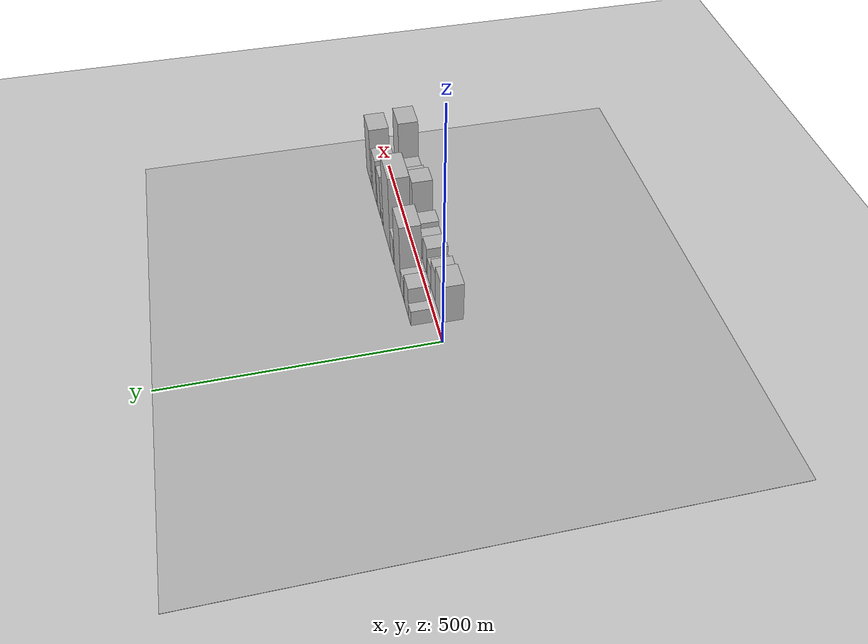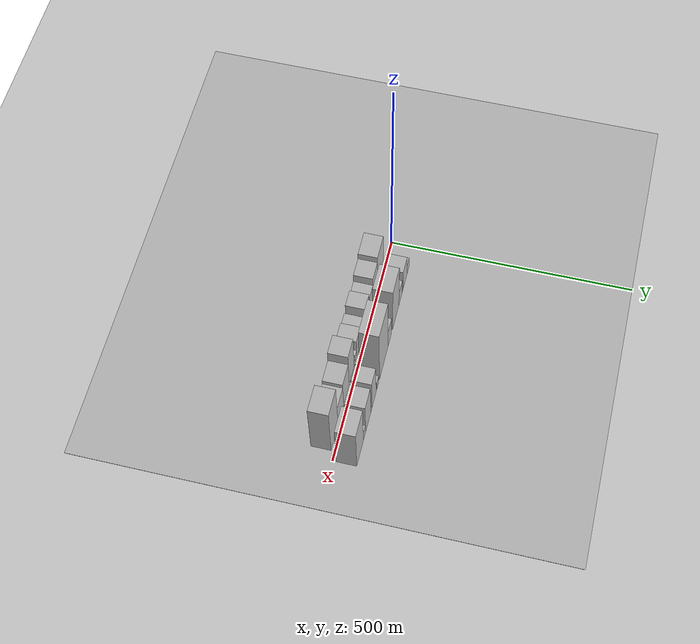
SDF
<?xml version="1.0" encoding="utf-8"?>

<sdf version="1.6">

   <world name="default">

      <gui fullscreen="0">

         <camera name="user_camera">

            <pose>-15 0 4.57585 0 0 0</pose>

            <view_controller>orbit</view_controller>

         </camera>

      </gui>

      <scene>

         <sky>

           <clouds>

             <speed>12</speed>

           </clouds>

         </sky>

         <ambient>0.4 0.4 0.4 1</ambient>

         <background>0.7 0.7 0.7 1</background>

         <shadows>1</shadows>

      </scene>

      <gravity>0 0 -9.8066</gravity>

      <magnetic_field>6e-06 2.3e-05 -4.2e-05</magnetic_field>

      <physics default="0" name="default_physics" type="ode">

         <ode>

            <solver>

               <type>quick</type>

               <iters>10</iters>

               <sor>1.0</sor>

               <use_dynamic_moi_rescaling>0</use_dynamic_moi_rescaling>

            </solver>

            <constraints>

               <cfm>0</cfm>

               <erp>0.2</erp>

               <contact_max_correcting_vel>100</contact_max_correcting_vel>

               <contact_surface_layer>0.001</contact_surface_layer>

            </constraints>

         </ode>

         <max_step_size>0.004</max_step_size>

         <real_time_factor>1</real_time_factor>

         <real_time_update_rate>250</real_time_update_rate>

      </physics>

      <light name="sun" type="directional">

         <cast_shadows>1</cast_shadows>

         <pose>0 0 10 0 0 0</pose>

         <diffuse>0.8 0.8 0.8 1</diffuse>

         <specular>0.2 0.2 0.2 1</specular>

         <attenuation>

            <range>1000</range>

            <constant>0.9</constant>

            <linear>0.01</linear>

            <quadratic>0.001</quadratic>

         </attenuation>

         <direction>-0.5 0.1 -0.9</direction>

      </light>

      <include>

         <name>ground_plane_1</name>

         <uri>model://HANNAS_ground_plane</uri>

         <pose>0 0 0  0 0 0</pose>

      </include>

      <include>

         <name>ground_plane_2</name>

         <uri>model://HANNAS_ground_plane</uri>

         <pose>100 0 0  0 0 0</pose>

      </include>

      <model name="building_1">

         <static>1</static>

         <pose frame="">60.4046 27.5000 0 0.000000 0.000000 1.570796</pose>

         <link name="link">

            <pose frame="">0 0 18.00 0 0 0</pose>

            <collision name="collision">

               <geometry>

                  <box>

                     <size>40.0000 20.8093 36.0000</size>

                  </box>

               </geometry>

               <max_contacts>10</max_contacts>

               <surface>

                  <contact>

                     <ode/>

                  </contact>

                  <bounce/>

                  <friction>

                     <torsional>

                        <ode/>

                     </torsional>

                     <ode/>

                  </friction>

               </surface>

            </collision>

            <visual name="visual">

               <cast_shadows>0</cast_shadows>

               <geometry>

                  <box>

                     <size>40.0000 20.8093 36.0000</size>

                  </box>

               </geometry>

               <material>

                  <script>

                     <uri>model://HANNAS_wall/materials/scripts</uri>

                     <uri>model://HANNAS_wall/materials/textures</uri>

                     <name>vrc/HANNAS_wall</name>

                  </script>

               </material>

            </visual>

            <self_collide>0</self_collide>

            <enable_wind>0</enable_wind>

            <kinematic>0</kinematic>

         </link>

      </model>

      <model name="building_2">

         <static>1</static>

         <pose frame="">89.0843 27.5000 0 0.000000 0.000000 1.570796</pose>

         <link name="link">

            <pose frame="">0 0 36.00 0 0 0</pose>

            <collision name="collision">

               <geometry>

                  <box>

                     <size>40.0000 36.5500 72.0000</size>

                  </box>

               </geometry>

               <max_contacts>10</max_contacts>

               <surface>

                  <contact>

                     <ode/>

                  </contact>

                  <bounce/>

                  <friction>

                     <torsional>

                        <ode/>

                     </torsional>

                     <ode/>

                  </friction>

               </surface>

            </collision>

            <visual name="visual">

               <cast_shadows>0</cast_shadows>

               <geometry>

                  <box>

                     <size>40.0000 36.5500 72.0000</size>

                  </box>

               </geometry>

               <material>

                  <script>

                     <uri>model://HANNAS_wall/materials/scripts</uri>

                     <uri>model://HANNAS_wall/materials/textures</uri>

                     <name>vrc/HANNAS_wall</name>

                  </script>

               </material>

            </visual>

            <self_collide>0</self_collide>

            <enable_wind>0</enable_wind>

            <kinematic>0</kinematic>

         </link>

      </model>

      <model name="building_3">

         <static>1</static>

         <pose frame="">110.6040 27.5000 0 0.000000 0.000000 1.570796</pose>

         <link name="link">

            <pose frame="">0 0 7.50 0 0 0</pose>

            <collision name="collision">

               <geometry>

                  <box>

                     <size>40.0000 6.4895 15.0000</size>

                  </box>

               </geometry>

               <max_contacts>10</max_contacts>

               <surface>

                  <contact>

                     <ode/>

                  </contact>

                  <bounce/>

                  <friction>

                     <torsional>

                        <ode/>

                     </torsional>

                     <ode/>

                  </friction>

               </surface>

            </collision>

            <visual name="visual">

               <cast_shadows>0</cast_shadows>

               <geometry>

                  <box>

                     <size>40.0000 6.4895 15.0000</size>

                  </box>

               </geometry>

               <material>

                  <script>

                     <uri>model://HANNAS_wall/materials/scripts</uri>

                     <uri>model://HANNAS_wall/materials/textures</uri>

                     <name>vrc/HANNAS_wall</name>

                  </script>

               </material>

            </visual>

            <self_collide>0</self_collide>

            <enable_wind>0</enable_wind>

            <kinematic>0</kinematic>

         </link>

      </model>

      <model name="building_4">

         <static>1</static>

         <pose frame="">128.7569 27.5000 0 0.000000 0.000000 1.570796</pose>

         <link name="link">

            <pose frame="">0 0 25.50 0 0 0</pose>

            <collision name="collision">

               <geometry>

                  <box>

                     <size>40.0000 29.8163 51.0000</size>

                  </box>

               </geometry>

               <max_contacts>10</max_contacts>

               <surface>

                  <contact>

                     <ode/>

                  </contact>

                  <bounce/>

                  <friction>

                     <torsional>

                        <ode/>

                     </torsional>

                     <ode/>

                  </friction>

               </surface>

            </collision>

            <visual name="visual">

               <cast_shadows>0</cast_shadows>

               <geometry>

                  <box>

                     <size>40.0000 29.8163 51.0000</size>

                  </box>

               </geometry>

               <material>

                  <script>

                     <uri>model://HANNAS_wall/materials/scripts</uri>

                     <uri>model://HANNAS_wall/materials/textures</uri>

                     <name>vrc/HANNAS_wall</name>

                  </script>

               </material>

            </visual>

            <self_collide>0</self_collide>

            <enable_wind>0</enable_wind>

            <kinematic>0</kinematic>

         </link>

      </model>

      <model name="building_5">

         <static>1</static>

         <pose frame="">172.2235 27.5000 0 0.000000 0.000000 1.570796</pose>

         <link name="link">

            <pose frame="">0 0 75.00 0 0 0</pose>

            <collision name="collision">

               <geometry>

                  <box>

                     <size>40.0000 57.1169 150.0000</size>

                  </box>

               </geometry>

               <max_contacts>10</max_contacts>

               <surface>

                  <contact>

                     <ode/>

                  </contact>

                  <bounce/>

                  <friction>

                     <torsional>

                        <ode/>

                     </torsional>

                     <ode/>

                  </friction>

               </surface>

            </collision>

            <visual name="visual">

               <cast_shadows>0</cast_shadows>

               <geometry>

                  <box>

                     <size>40.0000 57.1169 150.0000</size>

                  </box>

               </geometry>

               <material>

                  <script>

                     <uri>model://HANNAS_wall/materials/scripts</uri>

                     <uri>model://HANNAS_wall/materials/textures</uri>

                     <name>vrc/HANNAS_wall</name>

                  </script>

               </material>

            </visual>

            <self_collide>0</self_collide>

            <enable_wind>0</enable_wind>

            <kinematic>0</kinematic>

         </link>

      </model>

      <model name="building_6">

         <static>1</static>

         <pose frame="">225.2234 27.5000 0 0.000000 0.000000 1.570796</pose>

         <link name="link">

            <pose frame="">0 0 31.50 0 0 0</pose>

            <collision name="collision">

               <geometry>

                  <box>

                     <size>40.0000 32.8828 63.0000</size>

                  </box>

               </geometry>

               <max_contacts>10</max_contacts>

               <surface>

                  <contact>

                     <ode/>

                  </contact>

                  <bounce/>

                  <friction>

                     <torsional>

                        <ode/>

                     </torsional>

                     <ode/>

                  </friction>

               </surface>

            </collision>

            <visual name="visual">

               <cast_shadows>0</cast_shadows>

               <geometry>

                  <box>

                     <size>40.0000 32.8828 63.0000</size>

                  </box>

               </geometry>

               <material>

                  <script>

                     <uri>model://HANNAS_wall/materials/scripts</uri>

                     <uri>model://HANNAS_wall/materials/textures</uri>

                     <name>vrc/HANNAS_wall</name>

                  </script>

               </material>

            </visual>

            <self_collide>0</self_collide>

            <enable_wind>0</enable_wind>

            <kinematic>0</kinematic>

         </link>

      </model>

      <model name="building_7">

         <static>1</static>

         <pose frame="">277.6087 27.5000 0 0.000000 0.000000 1.570796</pose>

         <link name="link">

            <pose frame="">0 0 90.00 0 0 0</pose>

            <collision name="collision">

               <geometry>

                  <box>

                     <size>40.0000 71.8879 180.0000</size>

                  </box>

               </geometry>

               <max_contacts>10</max_contacts>

               <surface>

                  <contact>

                     <ode/>

                  </contact>

                  <bounce/>

                  <friction>

                     <torsional>

                        <ode/>

                     </torsional>

                     <ode/>

                  </friction>

               </surface>

            </collision>

            <visual name="visual">

               <cast_shadows>0</cast_shadows>

               <geometry>

                  <box>

                     <size>40.0000 71.8879 180.0000</size>

                  </box>

               </geometry>

               <material>

                  <script>

                     <uri>model://HANNAS_wall/materials/scripts</uri>

                     <uri>model://HANNAS_wall/materials/textures</uri>

                     <name>vrc/HANNAS_wall</name>

                  </script>

               </material>

            </visual>

            <self_collide>0</self_collide>

            <enable_wind>0</enable_wind>

            <kinematic>0</kinematic>

         </link>

      </model>

      <model name="building_8">

         <static>1</static>

         <pose frame="">327.7260 27.5000 0 0.000000 0.000000 1.570796</pose>

         <link name="link">

            <pose frame="">0 0 15.00 0 0 0</pose>

            <collision name="collision">

               <geometry>

                  <box>

                     <size>40.0000 16.3466 30.0000</size>

                  </box>

               </geometry>

               <max_contacts>10</max_contacts>

               <surface>

                  <contact>

                     <ode/>

                  </contact>

                  <bounce/>

                  <friction>

                     <torsional>

                        <ode/>

                     </torsional>

                     <ode/>

                  </friction>

               </surface>

            </collision>

            <visual name="visual">

               <cast_shadows>0</cast_shadows>

               <geometry>

                  <box>

                     <size>40.0000 16.3466 30.0000</size>

                  </box>

               </geometry>

               <material>

                  <script>

                     <uri>model://HANNAS_wall/materials/scripts</uri>

                     <uri>model://HANNAS_wall/materials/textures</uri>

                     <name>vrc/HANNAS_wall</name>

                  </script>

               </material>

            </visual>

            <self_collide>0</self_collide>

            <enable_wind>0</enable_wind>

            <kinematic>0</kinematic>

         </link>

      </model>

      <model name="building_9">

         <static>1</static>

         <pose frame="">359.2704 27.5000 0 0.000000 0.000000 1.570796</pose>

         <link name="link">

            <pose frame="">0 0 52.50 0 0 0</pose>

            <collision name="collision">

               <geometry>

                  <box>

                     <size>40.0000 34.7423 105.0000</size>

                  </box>

               </geometry>

               <max_contacts>10</max_contacts>

               <surface>

                  <contact>

                     <ode/>

                  </contact>

                  <bounce/>

                  <friction>

                     <torsional>

                        <ode/>

                     </torsional>

                     <ode/>

                  </friction>

               </surface>

            </collision>

            <visual name="visual">

               <cast_shadows>0</cast_shadows>

               <geometry>

                  <box>

                     <size>40.0000 34.7423 105.0000</size>

                  </box>

               </geometry>

               <material>

                  <script>

                     <uri>model://HANNAS_wall/materials/scripts</uri>

                     <uri>model://HANNAS_wall/materials/textures</uri>

                     <name>vrc/HANNAS_wall</name>

                  </script>

               </material>

            </visual>

            <self_collide>0</self_collide>

            <enable_wind>0</enable_wind>

            <kinematic>0</kinematic>

         </link>

      </model>

      <model name="building_10">

         <static>1</static>

         <pose frame="">381.4641 27.5000 0 0.000000 0.000000 1.570796</pose>

         <link name="link">

            <pose frame="">0 0 10.50 0 0 0</pose>

            <collision name="collision">

               <geometry>

                  <box>

                     <size>40.0000 9.6452 21.0000</size>

                  </box>

               </geometry>

               <max_contacts>10</max_contacts>

               <surface>

                  <contact>

                     <ode/>

                  </contact>

                  <bounce/>

                  <friction>

                     <torsional>

                        <ode/>

                     </torsional>

                     <ode/>

                  </friction>

               </surface>

            </collision>

            <visual name="visual">

               <cast_shadows>0</cast_shadows>

               <geometry>

                  <box>

                     <size>40.0000 9.6452 21.0000</size>

                  </box>

               </geometry>

               <material>

                  <script>

                     <uri>model://HANNAS_wall/materials/scripts</uri>

                     <uri>model://HANNAS_wall/materials/textures</uri>

                     <name>vrc/HANNAS_wall</name>

                  </script>

               </material>

            </visual>

            <self_collide>0</self_collide>

            <enable_wind>0</enable_wind>

            <kinematic>0</kinematic>

         </link>

      </model>

      <model name="building_11">

         <static>1</static>

         <pose frame="">407.2352 27.5000 0 0.000000 0.000000 1.570796</pose>

         <link name="link">

            <pose frame="">0 0 54.00 0 0 0</pose>

            <collision name="collision">

               <geometry>

                  <box>

                     <size>40.0000 41.8970 108.0000</size>

                  </box>

               </geometry>

               <max_contacts>10</max_contacts>

               <surface>

                  <contact>

                     <ode/>

                  </contact>

                  <bounce/>

                  <friction>

                     <torsional>

                        <ode/>

                     </torsional>

                     <ode/>

                  </friction>

               </surface>

            </collision>

            <visual name="visual">

               <cast_shadows>0</cast_shadows>

               <geometry>

                  <box>

                     <size>40.0000 41.8970 108.0000</size>

                  </box>

               </geometry>

               <material>

                  <script>

                     <uri>model://HANNAS_wall/materials/scripts</uri>

                     <uri>model://HANNAS_wall/materials/textures</uri>

                     <name>vrc/HANNAS_wall</name>

                  </script>

               </material>

            </visual>

            <self_collide>0</self_collide>

            <enable_wind>0</enable_wind>

            <kinematic>0</kinematic>

         </link>

      </model>

      <model name="building_12">

         <static>1</static>

         <pose frame="">437.2371 27.5000 0 0.000000 0.000000 1.570796</pose>

         <link name="link">

            <pose frame="">0 0 16.50 0 0 0</pose>

            <collision name="collision">

               <geometry>

                  <box>

                     <size>40.0000 18.1068 33.0000</size>

                  </box>

               </geometry>

               <max_contacts>10</max_contacts>

               <surface>

                  <contact>

                     <ode/>

                  </contact>

                  <bounce/>

                  <friction>

                     <torsional>

                        <ode/>

                     </torsional>

                     <ode/>

                  </friction>

               </surface>

            </collision>

            <visual name="visual">

               <cast_shadows>0</cast_shadows>

               <geometry>

                  <box>

                     <size>40.0000 18.1068 33.0000</size>

                  </box>

               </geometry>

               <material>

                  <script>

                     <uri>model://HANNAS_wall/materials/scripts</uri>

                     <uri>model://HANNAS_wall/materials/textures</uri>

                     <name>vrc/HANNAS_wall</name>

                  </script>

               </material>

            </visual>

            <self_collide>0</self_collide>

            <enable_wind>0</enable_wind>

            <kinematic>0</kinematic>

         </link>

      </model>

      <model name="building_13">

         <static>1</static>

         <pose frame="">472.8130 27.5000 0 0.000000 0.000000 1.570796</pose>

         <link name="link">

            <pose frame="">0 0 69.00 0 0 0</pose>

            <collision name="collision">

               <geometry>

                  <box>

                     <size>40.0000 53.0449 138.0000</size>

                  </box>

               </geometry>

               <max_contacts>10</max_contacts>

               <surface>

                  <contact>

                     <ode/>

                  </contact>

                  <bounce/>

                  <friction>

                     <torsional>

                        <ode/>

                     </torsional>

                     <ode/>

                  </friction>

               </surface>

            </collision>

            <visual name="visual">

               <cast_shadows>0</cast_shadows>

               <geometry>

                  <box>

                     <size>40.0000 53.0449 138.0000</size>

                  </box>

               </geometry>

               <material>

                  <script>

                     <uri>model://HANNAS_wall/materials/scripts</uri>

                     <uri>model://HANNAS_wall/materials/textures</uri>

                     <name>vrc/HANNAS_wall</name>

                  </script>

               </material>

            </visual>

            <self_collide>0</self_collide>

            <enable_wind>0</enable_wind>

            <kinematic>0</kinematic>

         </link>

      </model>

      <model name="building_14">

         <static>1</static>

         <pose frame="">70.7400 -27.5000 0 0.000000 0.000000 1.570796</pose>

         <link name="link">

            <pose frame="">0 0 45.00 0 0 0</pose>

            <collision name="collision">

               <geometry>

                  <box>

                     <size>40.0000 51.4800 90.0000</size>

                  </box>

               </geometry>

               <max_contacts>10</max_contacts>

               <surface>

                  <contact>

                     <ode/>

                  </contact>

                  <bounce/>

                  <friction>

                     <torsional>

                        <ode/>

                     </torsional>

                     <ode/>

                  </friction>

               </surface>

            </collision>

            <visual name="visual">

               <cast_shadows>0</cast_shadows>

               <geometry>

                  <box>

                     <size>40.0000 51.4800 90.0000</size>

                  </box>

               </geometry>

               <material>

                  <script>

                     <uri>model://HANNAS_wall/materials/scripts</uri>

                     <uri>model://HANNAS_wall/materials/textures</uri>

                     <name>vrc/HANNAS_wall</name>

                  </script>

               </material>

            </visual>

            <self_collide>0</self_collide>

            <enable_wind>0</enable_wind>

            <kinematic>0</kinematic>

         </link>

      </model>

      <model name="building_15">

         <static>1</static>

         <pose frame="">116.0948 -27.5000 0 0.000000 0.000000 1.570796</pose>

         <link name="link">

            <pose frame="">0 0 36.00 0 0 0</pose>

            <collision name="collision">

               <geometry>

                  <box>

                     <size>40.0000 39.2296 72.0000</size>

                  </box>

               </geometry>

               <max_contacts>10</max_contacts>

               <surface>

                  <contact>

                     <ode/>

                  </contact>

                  <bounce/>

                  <friction>

                     <torsional>

                        <ode/>

                     </torsional>

                     <ode/>

                  </friction>

               </surface>

            </collision>

            <visual name="visual">

               <cast_shadows>0</cast_shadows>

               <geometry>

                  <box>

                     <size>40.0000 39.2296 72.0000</size>

                  </box>

               </geometry>

               <material>

                  <script>

                     <uri>model://HANNAS_wall/materials/scripts</uri>

                     <uri>model://HANNAS_wall/materials/textures</uri>

                     <name>vrc/HANNAS_wall</name>

                  </script>

               </material>

            </visual>

            <self_collide>0</self_collide>

            <enable_wind>0</enable_wind>

            <kinematic>0</kinematic>

         </link>

      </model>

      <model name="building_16">

         <static>1</static>

         <pose frame="">149.8241 -27.5000 0 0.000000 0.000000 1.570796</pose>

         <link name="link">

            <pose frame="">0 0 24.00 0 0 0</pose>

            <collision name="collision">

               <geometry>

                  <box>

                     <size>40.0000 28.2291 48.0000</size>

                  </box>

               </geometry>

               <max_contacts>10</max_contacts>

               <surface>

                  <contact>

                     <ode/>

                  </contact>

                  <bounce/>

                  <friction>

                     <torsional>

                        <ode/>

                     </torsional>

                     <ode/>

                  </friction>

               </surface>

            </collision>

            <visual name="visual">

               <cast_shadows>0</cast_shadows>

               <geometry>

                  <box>

                     <size>40.0000 28.2291 48.0000</size>

                  </box>

               </geometry>

               <material>

                  <script>

                     <uri>model://HANNAS_wall/materials/scripts</uri>

                     <uri>model://HANNAS_wall/materials/textures</uri>

                     <name>vrc/HANNAS_wall</name>

                  </script>

               </material>

            </visual>

            <self_collide>0</self_collide>

            <enable_wind>0</enable_wind>

            <kinematic>0</kinematic>

         </link>

      </model>

      <model name="building_17">

         <static>1</static>

         <pose frame="">185.4243 -27.5000 0 0.000000 0.000000 1.570796</pose>

         <link name="link">

            <pose frame="">0 0 33.00 0 0 0</pose>

            <collision name="collision">

               <geometry>

                  <box>

                     <size>40.0000 34.9711 66.0000</size>

                  </box>

               </geometry>

               <max_contacts>10</max_contacts>

               <surface>

                  <contact>

                     <ode/>

                  </contact>

                  <bounce/>

                  <friction>

                     <torsional>

                        <ode/>

                     </torsional>

                     <ode/>

                  </friction>

               </surface>

            </collision>

            <visual name="visual">

               <cast_shadows>0</cast_shadows>

               <geometry>

                  <box>

                     <size>40.0000 34.9711 66.0000</size>

                  </box>

               </geometry>

               <material>

                  <script>

                     <uri>model://HANNAS_wall/materials/scripts</uri>

                     <uri>model://HANNAS_wall/materials/textures</uri>

                     <name>vrc/HANNAS_wall</name>

                  </script>

               </material>

            </visual>

            <self_collide>0</self_collide>

            <enable_wind>0</enable_wind>

            <kinematic>0</kinematic>

         </link>

      </model>

      <model name="building_18">

         <static>1</static>

         <pose frame="">226.3975 -27.5000 0 0.000000 0.000000 1.570796</pose>

         <link name="link">

            <pose frame="">0 0 25.50 0 0 0</pose>

            <collision name="collision">

               <geometry>

                  <box>

                     <size>40.0000 28.9753 51.0000</size>

                  </box>

               </geometry>

               <max_contacts>10</max_contacts>

               <surface>

                  <contact>

                     <ode/>

                  </contact>

                  <bounce/>

                  <friction>

                     <torsional>

                        <ode/>

                     </torsional>

                     <ode/>

                  </friction>

               </surface>

            </collision>

            <visual name="visual">

               <cast_shadows>0</cast_shadows>

               <geometry>

                  <box>

                     <size>40.0000 28.9753 51.0000</size>

                  </box>

               </geometry>

               <material>

                  <script>

                     <uri>model://HANNAS_wall/materials/scripts</uri>

                     <uri>model://HANNAS_wall/materials/textures</uri>

                     <name>vrc/HANNAS_wall</name>

                  </script>

               </material>

            </visual>

            <self_collide>0</self_collide>

            <enable_wind>0</enable_wind>

            <kinematic>0</kinematic>

         </link>

      </model>

      <model name="building_19">

         <static>1</static>

         <pose frame="">257.6047 -27.5000 0 0.000000 0.000000 1.570796</pose>

         <link name="link">

            <pose frame="">0 0 31.50 0 0 0</pose>

            <collision name="collision">

               <geometry>

                  <box>

                     <size>40.0000 33.4391 63.0000</size>

                  </box>

               </geometry>

               <max_contacts>10</max_contacts>

               <surface>

                  <contact>

                     <ode/>

                  </contact>

                  <bounce/>

                  <friction>

                     <torsional>

                        <ode/>

                     </torsional>

                     <ode/>

                  </friction>

               </surface>

            </collision>

            <visual name="visual">

               <cast_shadows>0</cast_shadows>

               <geometry>

                  <box>

                     <size>40.0000 33.4391 63.0000</size>

                  </box>

               </geometry>

               <material>

                  <script>

                     <uri>model://HANNAS_wall/materials/scripts</uri>

                     <uri>model://HANNAS_wall/materials/textures</uri>

                     <name>vrc/HANNAS_wall</name>

                  </script>

               </material>

            </visual>

            <self_collide>0</self_collide>

            <enable_wind>0</enable_wind>

            <kinematic>0</kinematic>

         </link>

      </model>

      <model name="building_20">

         <static>1</static>

         <pose frame="">280.6680 -27.5000 0 0.000000 0.000000 1.570796</pose>

         <link name="link">

            <pose frame="">0 0 13.50 0 0 0</pose>

            <collision name="collision">

               <geometry>

                  <box>

                     <size>40.0000 12.6874 27.0000</size>

                  </box>

               </geometry>

               <max_contacts>10</max_contacts>

               <surface>

                  <contact>

                     <ode/>

                  </contact>

                  <bounce/>

                  <friction>

                     <torsional>

                        <ode/>

                     </torsional>

                     <ode/>

                  </friction>

               </surface>

            </collision>

            <visual name="visual">

               <cast_shadows>0</cast_shadows>

               <geometry>

                  <box>

                     <size>40.0000 12.6874 27.0000</size>

                  </box>

               </geometry>

               <material>

                  <script>

                     <uri>model://HANNAS_wall/materials/scripts</uri>

                     <uri>model://HANNAS_wall/materials/textures</uri>

                     <name>vrc/HANNAS_wall</name>

                  </script>

               </material>

            </visual>

            <self_collide>0</self_collide>

            <enable_wind>0</enable_wind>

            <kinematic>0</kinematic>

         </link>

      </model>

      <model name="building_21">

         <static>1</static>

         <pose frame="">292.1982 -27.5000 0 0.000000 0.000000 1.570796</pose>

         <link name="link">

            <pose frame="">0 0 10.50 0 0 0</pose>

            <collision name="collision">

               <geometry>

                  <box>

                     <size>40.0000 10.3730 21.0000</size>

                  </box>

               </geometry>

               <max_contacts>10</max_contacts>

               <surface>

                  <contact>

                     <ode/>

                  </contact>

                  <bounce/>

                  <friction>

                     <torsional>

                        <ode/>

                     </torsional>

                     <ode/>

                  </friction>

               </surface>

            </collision>

            <visual name="visual">

               <cast_shadows>0</cast_shadows>

               <geometry>

                  <box>

                     <size>40.0000 10.3730 21.0000</size>

                  </box>

               </geometry>

               <material>

                  <script>

                     <uri>model://HANNAS_wall/materials/scripts</uri>

                     <uri>model://HANNAS_wall/materials/textures</uri>

                     <name>vrc/HANNAS_wall</name>

                  </script>

               </material>

            </visual>

            <self_collide>0</self_collide>

            <enable_wind>0</enable_wind>

            <kinematic>0</kinematic>

         </link>

      </model>

      <model name="building_22">

         <static>1</static>

         <pose frame="">317.2066 -27.5000 0 0.000000 0.000000 1.570796</pose>

         <link name="link">

            <pose frame="">0 0 58.50 0 0 0</pose>

            <collision name="collision">

               <geometry>

                  <box>

                     <size>40.0000 39.6437 117.0000</size>

                  </box>

               </geometry>

               <max_contacts>10</max_contacts>

               <surface>

                  <contact>

                     <ode/>

                  </contact>

                  <bounce/>

                  <friction>

                     <torsional>

                        <ode/>

                     </torsional>

                     <ode/>

                  </friction>

               </surface>

            </collision>

            <visual name="visual">

               <cast_shadows>0</cast_shadows>

               <geometry>

                  <box>

                     <size>40.0000 39.6437 117.0000</size>

                  </box>

               </geometry>

               <material>

                  <script>

                     <uri>model://HANNAS_wall/materials/scripts</uri>

                     <uri>model://HANNAS_wall/materials/textures</uri>

                     <name>vrc/HANNAS_wall</name>

                  </script>

               </material>

            </visual>

            <self_collide>0</self_collide>

            <enable_wind>0</enable_wind>

            <kinematic>0</kinematic>

         </link>

      </model>

      <model name="building_23">

         <static>1</static>

         <pose frame="">359.2383 -27.5000 0 0.000000 0.000000 1.570796</pose>

         <link name="link">

            <pose frame="">0 0 43.50 0 0 0</pose>

            <collision name="collision">

               <geometry>

                  <box>

                     <size>40.0000 44.4196 87.0000</size>

                  </box>

               </geometry>

               <max_contacts>10</max_contacts>

               <surface>

                  <contact>

                     <ode/>

                  </contact>

                  <bounce/>

                  <friction>

                     <torsional>

                        <ode/>

                     </torsional>

                     <ode/>

                  </friction>

               </surface>

            </collision>

            <visual name="visual">

               <cast_shadows>0</cast_shadows>

               <geometry>

                  <box>

                     <size>40.0000 44.4196 87.0000</size>

                  </box>

               </geometry>

               <material>

                  <script>

                     <uri>model://HANNAS_wall/materials/scripts</uri>

                     <uri>model://HANNAS_wall/materials/textures</uri>

                     <name>vrc/HANNAS_wall</name>

                  </script>

               </material>

            </visual>

            <self_collide>0</self_collide>

            <enable_wind>0</enable_wind>

            <kinematic>0</kinematic>

         </link>

      </model>

      <model name="building_24">

         <static>1</static>

         <pose frame="">403.6634 -27.5000 0 0.000000 0.000000 1.570796</pose>

         <link name="link">

            <pose frame="">0 0 37.50 0 0 0</pose>

            <collision name="collision">

               <geometry>

                  <box>

                     <size>40.0000 44.4307 75.0000</size>

                  </box>

               </geometry>

               <max_contacts>10</max_contacts>

               <surface>

                  <contact>

                     <ode/>

                  </contact>

                  <bounce/>

                  <friction>

                     <torsional>

                        <ode/>

                     </torsional>

                     <ode/>

                  </friction>

               </surface>

            </collision>

            <visual name="visual">

               <cast_shadows>0</cast_shadows>

               <geometry>

                  <box>

                     <size>40.0000 44.4307 75.0000</size>

                  </box>

               </geometry>

               <material>

                  <script>

                     <uri>model://HANNAS_wall/materials/scripts</uri>

                     <uri>model://HANNAS_wall/materials/textures</uri>

                     <name>vrc/HANNAS_wall</name>

                  </script>

               </material>

            </visual>

            <self_collide>0</self_collide>

            <enable_wind>0</enable_wind>

            <kinematic>0</kinematic>

         </link>

      </model>

      <model name="building_25">

         <static>1</static>

         <pose frame="">452.6194 -27.5000 0 0.000000 0.000000 1.570796</pose>

         <link name="link">

            <pose frame="">0 0 79.50 0 0 0</pose>

            <collision name="collision">

               <geometry>

                  <box>

                     <size>40.0000 53.4813 159.0000</size>

                  </box>

               </geometry>

               <max_contacts>10</max_contacts>

               <surface>

                  <contact>

                     <ode/>

                  </contact>

                  <bounce/>

                  <friction>

                     <torsional>

                        <ode/>

                     </torsional>

                     <ode/>

                  </friction>

               </surface>

            </collision>

            <visual name="visual">

               <cast_shadows>0</cast_shadows>

               <geometry>

                  <box>

                     <size>40.0000 53.4813 159.0000</size>

                  </box>

               </geometry>

               <material>

                  <script>

                     <uri>model://HANNAS_wall/materials/scripts</uri>

                     <uri>model://HANNAS_wall/materials/textures</uri>

                     <name>vrc/HANNAS_wall</name>

                  </script>

               </material>

            </visual>

            <self_collide>0</self_collide>

            <enable_wind>0</enable_wind>

            <kinematic>0</kinematic>

         </link>

      </model>

   </world>

</sdf>

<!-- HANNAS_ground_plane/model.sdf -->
<sdf version="1.4">
<model name="HANNAS_ground_plane">
  <static>true</static>
    <link name="link">
      <collision name="collision">
        <geometry>
          <plane>
            <normal>0 0 1</normal>
            <size>1000 1000</size>
          </plane>
        </geometry>
        <surface>
          <friction>
            <ode>
              <mu>100</mu>
              <mu2>50</mu2>
            </ode>
          </friction>
        </surface>
      </collision>
      <visual name="visual">
        <cast_shadows>false</cast_shadows>
        <geometry>
          <plane>
            <normal>0 0 1</normal>
            <size>1000 1000</size>
          </plane>
        </geometry>
        <material>
          <script>
            <uri>model://HANNAS_ground_plane/materials/scripts/HANNAS_ground_plane.material</uri>
	    <uri>model://HANNAS_ground_plane/materials/textures</uri>
            <name>HANNASGroundPlane/Image</name>
          </script>
        </material>
      </visual>
    </link>
  </model>
</sdf>
